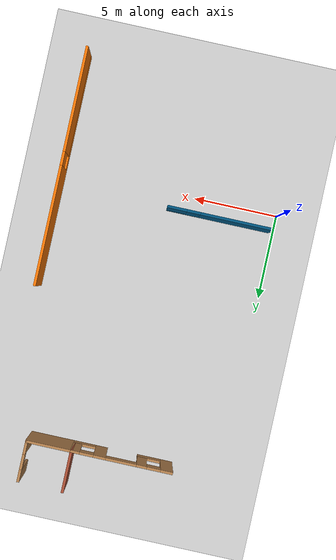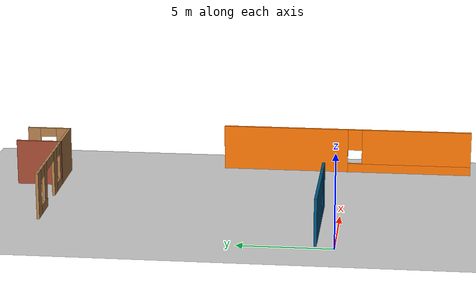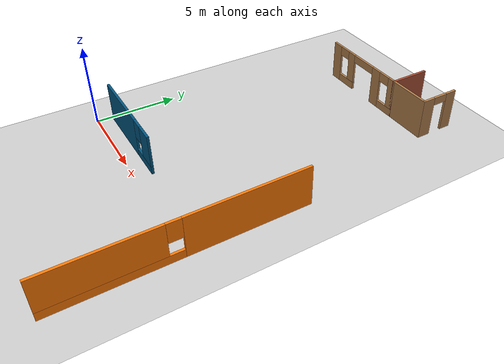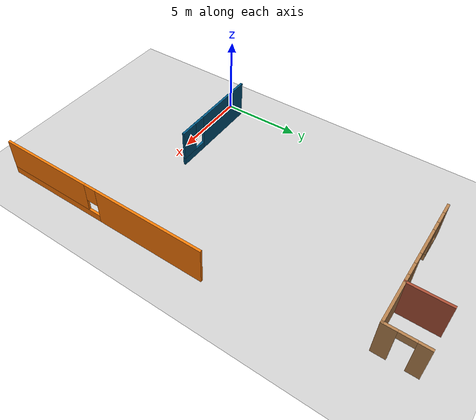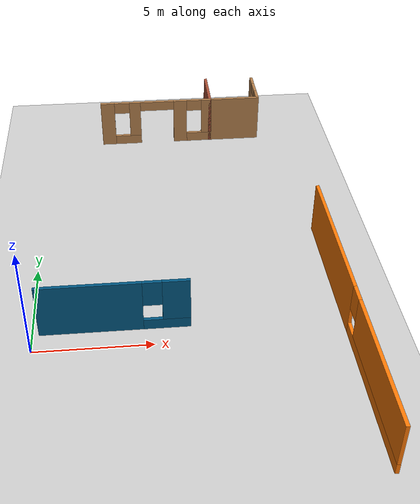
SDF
<sdf version="1.6">
 <world name="default">
  <model name="ground_plane">
   <static>1</static>
   <link name="link">
    <collision name="collision">
     <geometry><plane><normal>0 0 1</normal><size>100 100</size></plane></geometry>
     <surface><friction><ode><mu>100</mu><mu2>50</mu2></ode></friction></surface>
    </collision>
    <visual name="visual">
     <cast_shadows>0</cast_shadows>
     <geometry><plane><normal>0 0 1</normal><size>100 100</size></plane></geometry>
     <material>
      <script><uri>file://media/materials/scripts/gazebo.material</uri><name>Gazebo/Grey</name></script>
     </material>
    </visual>
   </link>
  </model>
  <model name="spiral_office">
   <link name="Wall_12">
    <pose>5.94037 15.8006 0 0 -0 0</pose>
    <visual name="Wall_12_Visual_0">
     <pose>-2.63334 0 1.25 0 -0 0</pose>
     <geometry><box><size>0.733327 0.15 2.5</size></box></geometry>
     <material>
      <script><uri>file://media/materials/scripts/gazebo.material</uri><name>Gazebo/Wood</name></script>
      <ambient>1 1 1 1</ambient>
     </material>
     <meta><layer>0</layer></meta>
    </visual>
    <collision name="Wall_12_Collision_0">
     <geometry><box><size>0.733327 0.15 2.5</size></box></geometry>
     <pose>-2.63334 0 1.25 0 -0 0</pose>
    </collision>
    <visual name="Wall_12_Visual_1">
     <pose>1.29307 0 1.25 0 -0 0</pose>
     <geometry><box><size>0.719491 0.15 2.5</size></box></geometry>
     <material>
      <script><uri>file://media/materials/scripts/gazebo.material</uri><name>Gazebo/Wood</name></script>
      <ambient>1 1 1 1</ambient>
     </material>
     <meta><layer>0</layer></meta>
    </visual>
    <collision name="Wall_12_Collision_1">
     <geometry><box><size>0.719491 0.15 2.5</size></box></geometry>
     <pose>1.29307 0 1.25 0 -0 0</pose>
    </collision>
    <visual name="Wall_12_Visual_2">
     <pose>-1.56667 0 0.25 0 -0 0</pose>
     <geometry><box><size>1.4 0.15 0.5</size></box></geometry>
     <material>
      <script><uri>file://media/materials/scripts/gazebo.material</uri><name>Gazebo/Wood</name></script>
      <ambient>1 1 1 1</ambient>
     </material>
     <meta><layer>0</layer></meta>
    </visual>
    <collision name="Wall_12_Collision_2">
     <geometry><box><size>1.4 0.15 0.5</size></box></geometry>
     <pose>-1.56667 0 0.25 0 -0 0</pose>
    </collision>
    <visual name="Wall_12_Visual_3">
     <pose>2.32641 0 0.25 0 -0 0</pose>
     <geometry><box><size>1.34718 0.15 0.5</size></box></geometry>
     <material>
      <script><uri>file://media/materials/scripts/gazebo.material</uri><name>Gazebo/Wood</name></script>
      <ambient>1 1 1 1</ambient>
     </material>
     <meta><layer>0</layer></meta>
    </visual>
    <collision name="Wall_12_Collision_3">
     <geometry><box><size>1.34718 0.15 0.5</size></box></geometry>
     <pose>2.32641 0 0.25 0 -0 0</pose>
    </collision>
    <visual name="Wall_12_Visual_4">
     <pose>-1.16667 0 1.5 0 -0 0</pose>
     <geometry><box><size>0.6 0.15 2</size></box></geometry>
     <material>
      <script><uri>file://media/materials/scripts/gazebo.material</uri><name>Gazebo/Wood</name></script>
      <ambient>1 1 1 1</ambient>
     </material>
     <meta><layer>0</layer></meta>
    </visual>
    <collision name="Wall_12_Collision_4">
     <geometry><box><size>0.6 0.15 2</size></box></geometry>
     <pose>-1.16667 0 1.5 0 -0 0</pose>
    </collision>
    <visual name="Wall_12_Visual_5">
     <pose>-1.16667 0 1.5 0 -0 0</pose>
     <geometry><box><size>0.6 0.15 2</size></box></geometry>
     <material>
      <script><uri>file://media/materials/scripts/gazebo.material</uri><name>Gazebo/Wood</name></script>
      <ambient>1 1 1 1</ambient>
     </material>
     <meta><layer>0</layer></meta>
    </visual>
    <collision name="Wall_12_Collision_5">
     <geometry><box><size>0.6 0.15 2</size></box></geometry>
     <pose>-1.16667 0 1.5 0 -0 0</pose>
    </collision>
    <visual name="Wall_12_Visual_6">
     <pose>2.72641 0 1.5 0 -0 0</pose>
     <geometry><box><size>0.547182 0.15 2</size></box></geometry>
     <material>
      <script><uri>file://media/materials/scripts/gazebo.material</uri><name>Gazebo/Wood</name></script>
      <ambient>1 1 1 1</ambient>
     </material>
     <meta><layer>0</layer></meta>
    </visual>
    <collision name="Wall_12_Collision_6">
     <geometry><box><size>0.547182 0.15 2</size></box></geometry>
     <pose>2.72641 0 1.5 0 -0 0</pose>
    </collision>
    <visual name="Wall_12_Visual_7">
     <pose>-1.86667 0 2.2 0 -0 0</pose>
     <geometry><box><size>0.8 0.15 0.6</size></box></geometry>
     <material>
      <script><uri>file://media/materials/scripts/gazebo.material</uri><name>Gazebo/Wood</name></script>
      <ambient>1 1 1 1</ambient>
     </material>
     <meta><layer>0</layer></meta>
    </visual>
    <collision name="Wall_12_Collision_7">
     <geometry><box><size>0.8 0.15 0.6</size></box></geometry>
     <pose>-1.86667 0 2.2 0 -0 0</pose>
    </collision>
    <visual name="Wall_12_Visual_8">
     <pose>2.05282 0 2.2 0 -0 0</pose>
     <geometry><box><size>0.8 0.15 0.6</size></box></geometry>
     <material>
      <script><uri>file://media/materials/scripts/gazebo.material</uri><name>Gazebo/Wood</name></script>
      <ambient>1 1 1 1</ambient>
     </material>
     <meta><layer>0</layer></meta>
    </visual>
    <collision name="Wall_12_Collision_8">
     <geometry><box><size>0.8 0.15 0.6</size></box></geometry>
     <pose>2.05282 0 2.2 0 -0 0</pose>
    </collision>
    <visual name="Wall_12_Visual_9">
     <pose>0.033327 0 2.25 0 -0 0</pose>
     <geometry><box><size>1.8 0.15 0.5</size></box></geometry>
     <material>
      <script><uri>file://media/materials/scripts/gazebo.material</uri><name>Gazebo/Wood</name></script>
      <ambient>1 1 1 1</ambient>
     </material>
     <meta><layer>0</layer></meta>
    </visual>
    <collision name="Wall_12_Collision_9">
     <geometry><box><size>1.8 0.15 0.5</size></box></geometry>
     <pose>0.033327 0 2.25 0 -0 0</pose>
    </collision>
    <visual name="Wall_12_Visual_10">
     <pose>0.033327 0 2.25 0 -0 0</pose>
     <geometry><box><size>1.8 0.15 0.5</size></box></geometry>
     <material>
      <script><uri>file://media/materials/scripts/gazebo.material</uri><name>Gazebo/Wood</name></script>
      <ambient>1 1 1 1</ambient>
     </material>
     <meta><layer>0</layer></meta>
    </visual>
    <collision name="Wall_12_Collision_10">
     <geometry><box><size>1.8 0.15 0.5</size></box></geometry>
     <pose>0.033327 0 2.25 0 -0 0</pose>
    </collision>
   </link>
   <link name="Wall_13">
    <collision name="Wall_13_Collision">
     <geometry><box><size>2.5 0.15 2.5</size></box></geometry>
     <pose>0 0 1.25 0 -0 0</pose>
    </collision>
    <visual name="Wall_13_Visual">
     <pose>0 0 1.25 0 -0 0</pose>
     <geometry><box><size>2.5 0.15 2.5</size></box></geometry>
     <material>
      <script><uri>file://media/materials/scripts/gazebo.material</uri><name>Gazebo/Bricks</name></script>
      <ambient>1 1 1 1</ambient>
     </material>
     <meta><layer>0</layer></meta>
    </visual>
    <pose>8.86537 16.9756 0 0 -0 1.5708</pose>
   </link>
   <link name="Wall_30">
    <collision name="Wall_30_Collision">
     <geometry><box><size>2.75 0.15 2.5</size></box></geometry>
     <pose>0 0 1.25 0 -0 0</pose>
    </collision>
    <visual name="Wall_30_Visual">
     <pose>0 0 1.25 0 -0 0</pose>
     <geometry><box><size>2.75 0.15 2.5</size></box></geometry>
     <material>
      <script><uri>file://media/materials/scripts/gazebo.material</uri><name>Gazebo/Wood</name></script>
      <ambient>1 1 1 1</ambient>
     </material>
     <meta><layer>0</layer></meta>
    </visual>
    <pose>10.1655 15.8006 0 0 0 -5e-06</pose>
   </link>
   <link name="Wall_31">
    <pose>11.4657 16.9456 0 0 -0 1.5708</pose>
    <visual name="Wall_31_Visual_0">
     <pose>-0.808945 0 1.25 0 -0 0</pose>
     <geometry><box><size>0.822111 0.15 2.5</size></box></geometry>
     <material>
      <script><uri>file://media/materials/scripts/gazebo.material</uri><name>Gazebo/Wood</name></script>
      <ambient>1 1 1 1</ambient>
     </material>
     <meta><layer>0</layer></meta>
    </visual>
    <collision name="Wall_31_Collision_0">
     <geometry><box><size>0.822111 0.15 2.5</size></box></geometry>
     <pose>-0.808945 0 1.25 0 -0 0</pose>
    </collision>
    <visual name="Wall_31_Visual_1">
     <pose>0.861055 0 1.25 0 -0 0</pose>
     <geometry><box><size>0.717889 0.15 2.5</size></box></geometry>
     <material>
      <script><uri>file://media/materials/scripts/gazebo.material</uri><name>Gazebo/Wood</name></script>
      <ambient>1 1 1 1</ambient>
     </material>
     <meta><layer>0</layer></meta>
    </visual>
    <collision name="Wall_31_Collision_1">
     <geometry><box><size>0.717889 0.15 2.5</size></box></geometry>
     <pose>0.861055 0 1.25 0 -0 0</pose>
    </collision>
    <visual name="Wall_31_Visual_2">
     <pose>0.052111 0 2.25 0 -0 0</pose>
     <geometry><box><size>0.9 0.15 0.5</size></box></geometry>
     <material>
      <script><uri>file://media/materials/scripts/gazebo.material</uri><name>Gazebo/Wood</name></script>
      <ambient>1 1 1 1</ambient>
     </material>
     <meta><layer>0</layer></meta>
    </visual>
    <collision name="Wall_31_Collision_2">
     <geometry><box><size>0.9 0.15 0.5</size></box></geometry>
     <pose>0.052111 0 2.25 0 -0 0</pose>
    </collision>
   </link>
   <link name="Wall_40">
    <pose>12.9458 0.063893 0 0 0 -1.5708</pose>
    <visual name="Wall_40_Visual_0">
     <pose>-3.47437 0 1.25 0 -0 0</pose>
     <geometry><box><size>7.05127 0.15 2.5</size></box></geometry>
     <material>
      <script><uri>file://media/materials/scripts/gazebo.material</uri><name>Gazebo/Grey</name></script>
      <ambient>0.996078 0.47451 0.0196078 1</ambient>
     </material>
     <meta><layer>0</layer></meta>
    </visual>
    <collision name="Wall_40_Collision_0">
     <geometry><box><size>7.05127 0.15 2.5</size></box></geometry>
     <pose>-3.47437 0 1.25 0 -0 0</pose>
    </collision>
    <visual name="Wall_40_Visual_1">
     <pose>3.52563 0 0.25 0 -0 0</pose>
     <geometry><box><size>6.94873 0.15 0.5</size></box></geometry>
     <material>
      <script><uri>file://media/materials/scripts/gazebo.material</uri><name>Gazebo/Grey</name></script>
      <ambient>0.996078 0.47451 0.0196078 1</ambient>
     </material>
     <meta><layer>0</layer></meta>
    </visual>
    <collision name="Wall_40_Collision_1">
     <geometry><box><size>6.94873 0.15 0.5</size></box></geometry>
     <pose>3.52563 0 0.25 0 -0 0</pose>
    </collision>
    <visual name="Wall_40_Visual_2">
     <pose>3.92563 0 1.5 0 -0 0</pose>
     <geometry><box><size>6.14873 0.15 2</size></box></geometry>
     <material>
      <script><uri>file://media/materials/scripts/gazebo.material</uri><name>Gazebo/Grey</name></script>
      <ambient>0.996078 0.47451 0.0196078 1</ambient>
     </material>
     <meta><layer>0</layer></meta>
    </visual>
    <collision name="Wall_40_Collision_2">
     <geometry><box><size>6.14873 0.15 2</size></box></geometry>
     <pose>3.92563 0 1.5 0 -0 0</pose>
    </collision>
    <visual name="Wall_40_Visual_3">
     <pose>0.451267 0 1.9 0 -0 0</pose>
     <geometry><box><size>0.8 0.15 1.2</size></box></geometry>
     <material>
      <script><uri>file://media/materials/scripts/gazebo.material</uri><name>Gazebo/Grey</name></script>
      <ambient>0.996078 0.47451 0.0196078 1</ambient>
     </material>
     <meta><layer>0</layer></meta>
    </visual>
    <collision name="Wall_40_Collision_3">
     <geometry><box><size>0.8 0.15 1.2</size></box></geometry>
     <pose>0.451267 0 1.9 0 -0 0</pose>
    </collision>
   </link>
   <link name="Wall_47">
    <pose>3.39584 0.988893 0 0 -0 0</pose>
    <visual name="Wall_47_Visual_0">
     <pose>-0.973573 0 1.25 0 -0 0</pose>
     <geometry><box><size>4.30285 0.15 2.5</size></box></geometry>
     <material>
      <script><uri>file://media/materials/scripts/gazebo.material</uri><name>Gazebo/Grey</name></script>
      <ambient>0 0.333333 0.498039 1</ambient>
     </material>
     <meta><layer>0</layer></meta>
    </visual>
    <collision name="Wall_47_Collision_0">
     <geometry><box><size>4.30285 0.15 2.5</size></box></geometry>
     <pose>-0.973573 0 1.25 0 -0 0</pose>
    </collision>
    <visual name="Wall_47_Visual_1">
     <pose>2.15143 0 0.25 0 -0 0</pose>
     <geometry><box><size>1.94715 0.15 0.5</size></box></geometry>
     <material>
      <script><uri>file://media/materials/scripts/gazebo.material</uri><name>Gazebo/Grey</name></script>
      <ambient>0 0.333333 0.498039 1</ambient>
     </material>
     <meta><layer>0</layer></meta>
    </visual>
    <collision name="Wall_47_Collision_1">
     <geometry><box><size>1.94715 0.15 0.5</size></box></geometry>
     <pose>2.15143 0 0.25 0 -0 0</pose>
    </collision>
    <visual name="Wall_47_Visual_2">
     <pose>2.55143 0 1.5 0 -0 0</pose>
     <geometry><box><size>1.14715 0.15 2</size></box></geometry>
     <material>
      <script><uri>file://media/materials/scripts/gazebo.material</uri><name>Gazebo/Grey</name></script>
      <ambient>0 0.333333 0.498039 1</ambient>
     </material>
     <meta><layer>0</layer></meta>
    </visual>
    <collision name="Wall_47_Collision_2">
     <geometry><box><size>1.14715 0.15 2</size></box></geometry>
     <pose>2.55143 0 1.5 0 -0 0</pose>
    </collision>
    <visual name="Wall_47_Visual_3">
     <pose>1.57785 0 1.9 0 -0 0</pose>
     <geometry><box><size>0.8 0.15 1.2</size></box></geometry>
     <material>
      <script><uri>file://media/materials/scripts/gazebo.material</uri><name>Gazebo/Grey</name></script>
      <ambient>0 0.333333 0.498039 1</ambient>
     </material>
     <meta><layer>0</layer></meta>
    </visual>
    <collision name="Wall_47_Collision_3">
     <geometry><box><size>0.8 0.15 1.2</size></box></geometry>
     <pose>1.57785 0 1.9 0 -0 0</pose>
    </collision>
   </link>
   <static>1</static>
  </model>
 </world>
</sdf>
